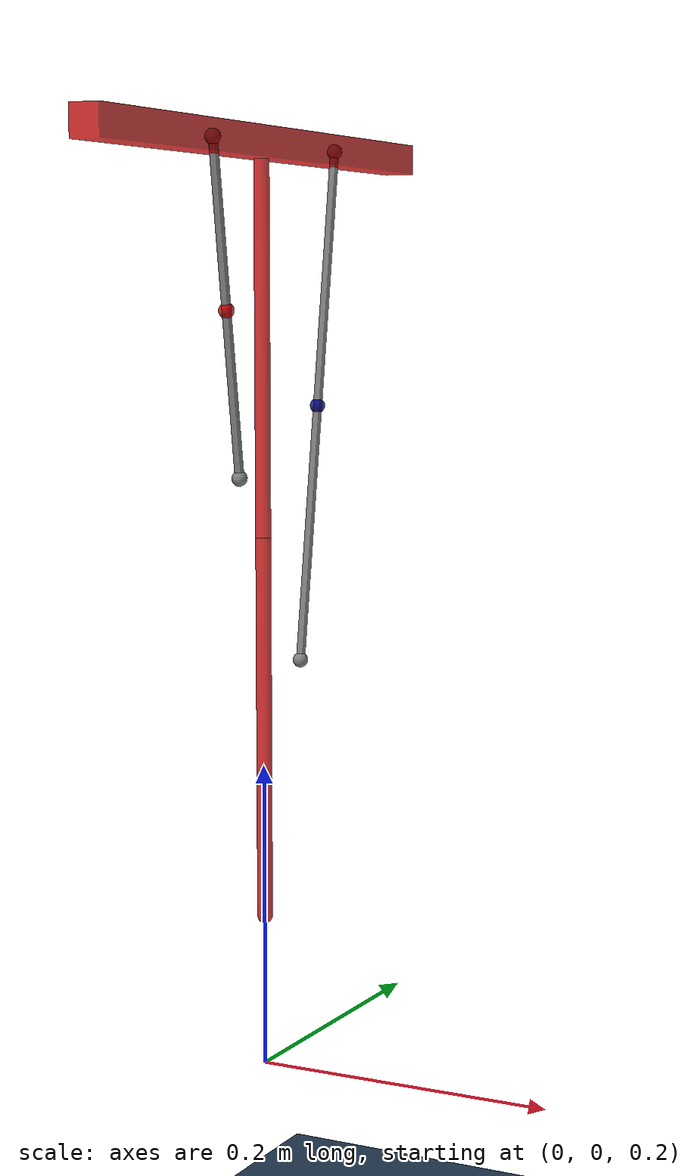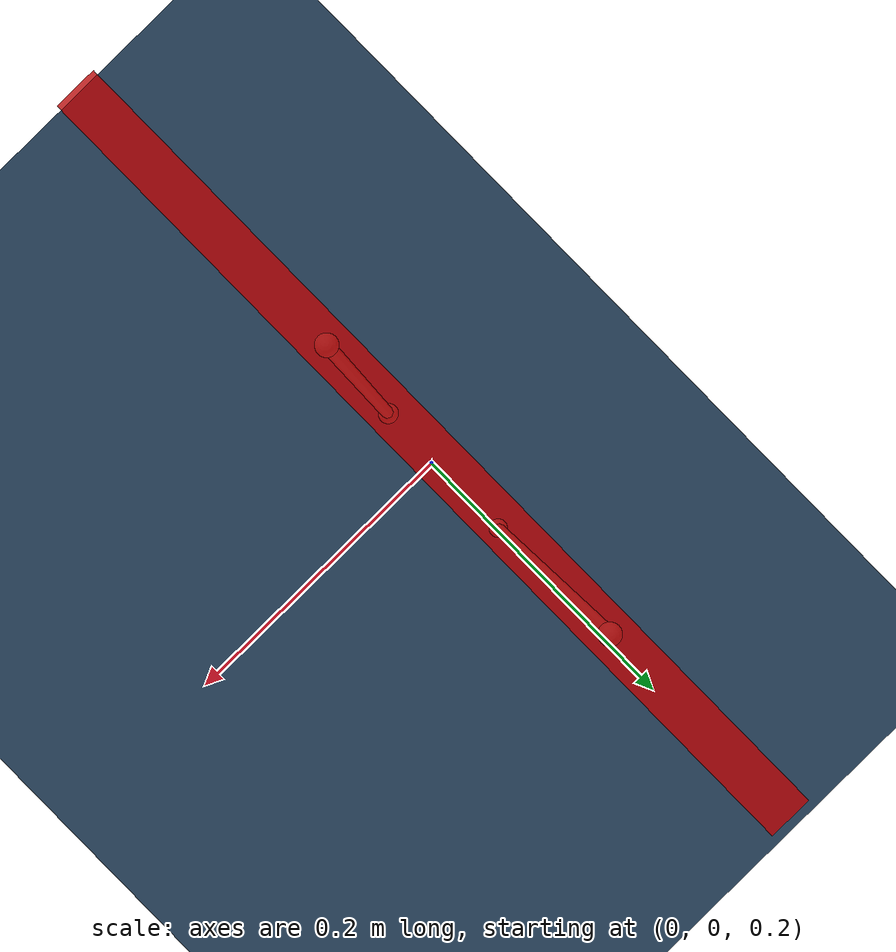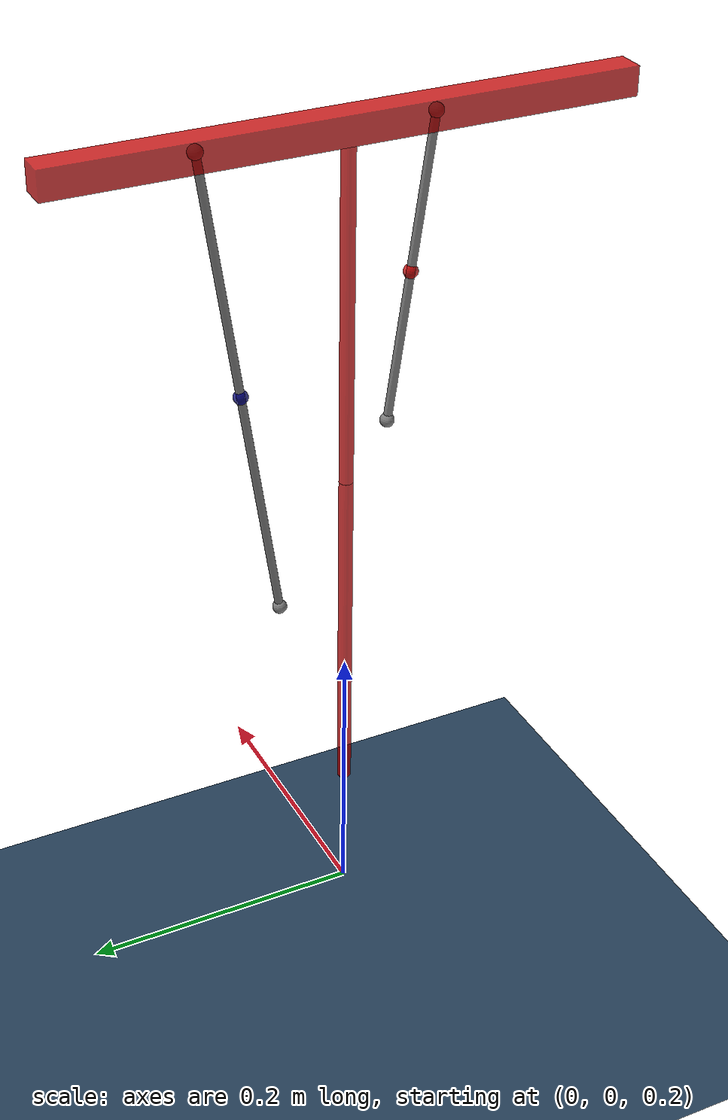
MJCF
<!-- 单腿的理想杆球模型 -->

<mujoco model="v2_4">
    <compiler angle="radian"/>
    <option timestep="0.001" iterations="2000" gravity="0 0 -9.8" tolerance="1e-10"/>

    <default>
        <geom density="418"/>
    </default>

    <asset>
        <texture name="grid" type="2d" builtin="checker" rgb1=".1 .2 .3"
            rgb2=".2 .3 .4" width="300" height="300"/>
        <material name="grid" texture="grid" texrepeat="8 8" reflectance=".2"/>
    </asset>

    <worldbody>
        <light name="top" pos="0 0 5" diffuse="1 1 1" ambient="0.5 0.5 0.5"/>
        <camera name="closeup" pos="1.483 -0.033 0.580" xyaxes="0.040 0.999 -0.000 -0.129 0.005 0.992"/>

        <geom size="10 10 .01" type="plane" material="grid" friction="1 0.005 0.0001"/>

        <body name="Base" pos="0 0 0.8">
            <geom size="0.01 0.2 0.01" type="box" rgba="0.8 0 0 0.8" mass="0.155" contype="0" conaffinity="0"/>
            <body name="RB_Thigh" pos="0 0 0">
                <geom size="0.005" type="capsule" rgba="0.8 0 0 0.8" mass="0.086" fromto="0 0 0 0 0 -0.25" contype="0" conaffinity="0"/>
                <joint name="RB_Shoulder" type="hinge" axis="1 0 0" range="-1.57 1.57"/>
                <body name="RB_Calf" pos="0 0 -0.25">
                    <geom size="0.005" type="capsule" rgba="0.8 0 0 0.8" mass="0.1033" fromto="0 0 0 0 0 -0.25" contype="0" conaffinity="0"/>
                    <joint name="RB_Elbow" type="hinge" axis="1 0 0" range="-1.57 1.57"/>
                </body>

            </body>
            <body name="RB_MAA_UPLink" pos="0 -0.06 0" axisangle="1 0 0 0.1419014548">
                <geom size="0.005" type="sphere" rgba="0.8 0 0 0.8" mass="0.03108" contype="0" conaffinity="0"/>
                <site name="RB_MAA_anchor1" pos="0 0 0"/>
                <joint name="RB_MAA_UpJoint" type="hinge" axis="1 0 0"/>
                <body name="RB_MAA_FM_Link" pos="0 0 -0.1060650937413537">
                    <geom size="0.005" type="sphere" rgba="0.8 0 0 0.8" mass="0.12432" contype="0" conaffinity="0"/>
                    <joint name="RB_MAA_SlideJoint" type="slide" axis="0 0 -1" damping="22.68" stiffness="637.52" springref="-0.019065093741353706"/>
                    <body name="RB_MAA_LOLink" pos="0 0 -0.1060650937413537">
                        <geom size="0.005" type="sphere" rgba="0.8 0 0 0.8" mass="0.03108" contype="0" conaffinity="0"/>
                        <joint name="RB_MAA_FM_SlideJoint" type="slide" axis="0 0 -1" damping="22.68" stiffness="637.52" springref="-0.019065093741353706"/>
                        <site name="RB_MAA_anchor2" pos="0 0 0"/>
                    </body>
                </body>
            </body>
            <body name="RB_BAA_UPLink" pos="0 0.1 0" axisangle="1 0 0 -0.147464847">
                <geom size="0.005" type="sphere" rgba="0 0 0.5 0.8" mass="0.04544333333" contype="0" conaffinity="0"/>
                <site name="RB_BAA_anchor1" pos="0 0 0"/>
                <joint name="RB_BAA_UpJoint" type="hinge" axis="1 0 0"/>
                <body name="RB_BAA_FM_LINK" pos="0 0 -0.17014792842496052">
                    <geom size="0.005" type="sphere" rgba="0 0 0.5 0.8" mass="0.1817733333" contype="0" conaffinity="0"/>
                    <joint name="RB_BAA_SlideJoint" type="slide" axis="0 0 -1" damping="21.8" stiffness="631.6" springref="-0.04204792842496052"/>
                    <body name="RB_BAA_LOLink" pos="0 0 -0.17014792842496052">
                        <geom size="0.005" type="sphere" rgba="0 0 0.5 0.8" mass="0.04544333333" contype="0" conaffinity="0"/>
                        <joint name="RB_BAA_FM_SlideJoint" type="slide" axis="0 0 -1" damping="21.8" stiffness="631.6" springref="-0.04204792842496052"/>
                        <site name="RB_BAA_anchor2" pos="0 0 0"/>
                    </body>
                </body>
            </body>
        </body>

    </worldbody>

          <!-- 增加在RB_RB_BAA_LowerJoint等关节中加入8个位置控制器，要求增加位置限制 -->
    <actuator>
        <motor joint="RB_MAA_SlideJoint" ctrllimited="true" ctrlrange="-200 200" />
        <motor joint="RB_MAA_FM_SlideJoint" ctrllimited="true" ctrlrange="-200 200" />
        <motor joint="RB_BAA_FM_SlideJoint" ctrllimited="true" ctrlrange="-200 200" />
        <motor joint="RB_BAA_SlideJoint" ctrllimited="true" ctrlrange="-200 200" />
    </actuator>

    <!-- 建立并联关系，如 RB_RB_BAA_LOLink 应该与 RB_Calf 连接 -->
    <equality>
        <connect name="RB_BAA_connect" anchor="0 0 0" body2="RB_Calf" body1="RB_BAA_LOLink" solimp="0.95 0.99 0.00001 0.1 2"/>
        <connect name="RB_MAA_connect" anchor="0 0 0" body2="RB_Thigh" body1="RB_MAA_LOLink" solimp="0.95 0.99 0.00001 0.1 2"/>

        <!-- FM 的相等约束 -->
        <joint name="MAA" joint1="RB_MAA_SlideJoint" joint2="RB_MAA_FM_SlideJoint" solimp="0.95 0.99 0.00001 0.1 2"/>
        <joint name="BAA" joint1="RB_BAA_SlideJoint" joint2="RB_BAA_FM_SlideJoint" solimp="0.95 0.99 0.00001 0.1 2"/>
    </equality>

    <!-- visualization -->
    <tendon>
        <spatial stiffness="0" width="0.003">
            <site site="RB_MAA_anchor1"/>
            <site site="RB_MAA_anchor2"/>
        </spatial>
        <spatial stiffness="0" width="0.003">
            <site site="RB_BAA_anchor1"/>
            <site site="RB_BAA_anchor2"/>
        </spatial>
    </tendon>

</mujoco>
